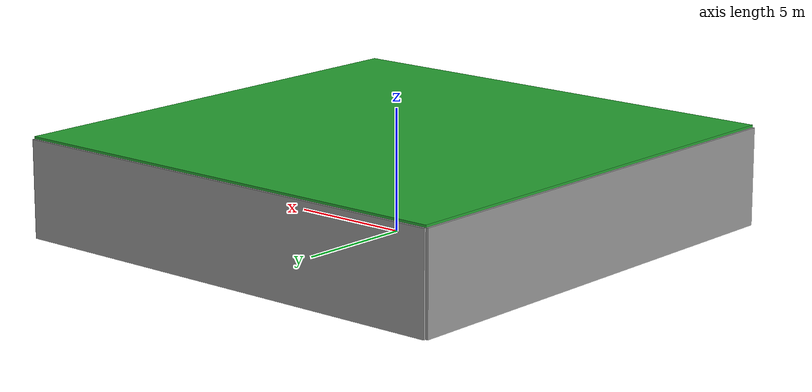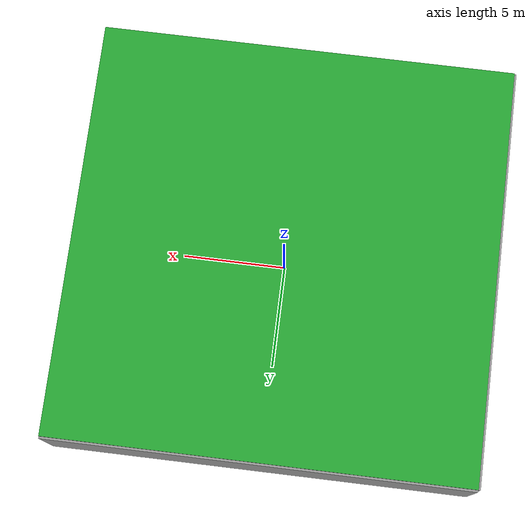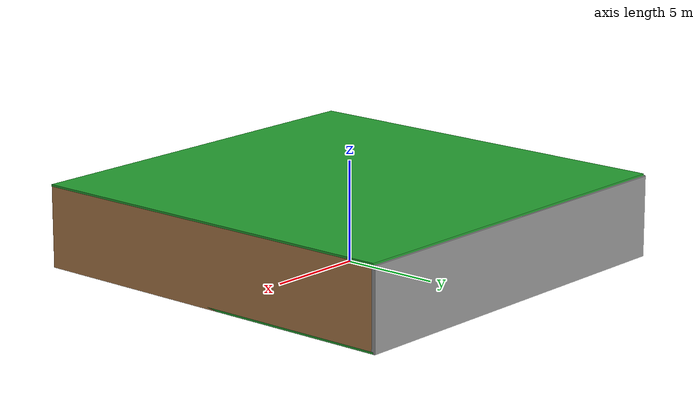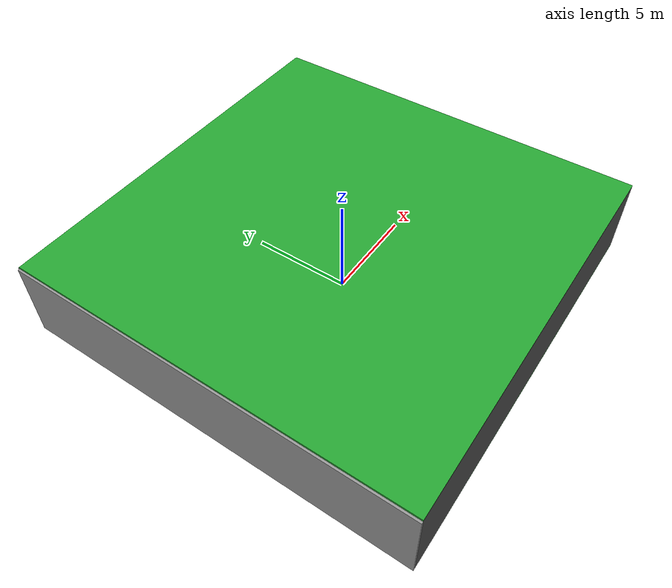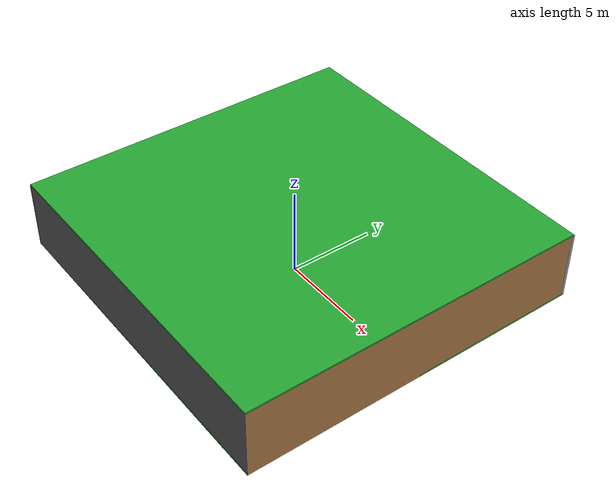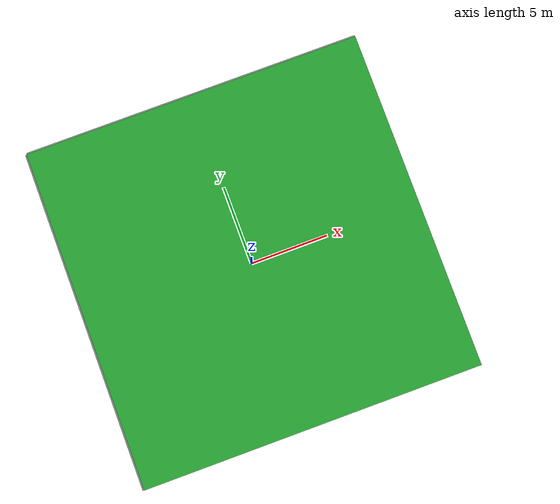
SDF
<sdf version="1.4">
 <world name="default">
  <physics type="ode">
   <max_step_size>0.001</max_step_size>
   <real_time_factor>1</real_time_factor>
   <real_time_update_rate>1000</real_time_update_rate>
   <gravity>0 0 -9.8</gravity>
  </physics>
  <scene><ambient>0.4 0.4 0.4 1</ambient><background>0.7 0.7 0.7 1</background><shadows>1</shadows></scene>
  <model name="Surrounding">
   <static>1</static>
   <link name="Ceiling">
    <collision name="Ceiling_Collision"><geometry><box><size>20 20 0.1</size></box></geometry></collision>
    <visual name="Ceiling_Visual">
     <geometry><box><size>20 20 0.1</size></box></geometry>
     <material>
      <script><uri>file://media/materials/scripts/gazebo.material</uri><name>Gazebo/Green</name></script>
     </material>
    </visual>
    <pose>0 0 4.05 0 0 0</pose>
   </link>
   <link name="Wall_South">
    <collision name="Wall_South_Collision">
     <geometry><box><size>20 0 4</size></box></geometry>
     <pose>0 0 2 0 -0 0</pose>
    </collision>
    <visual name="Wall_South_Visual">
     <pose>0 0 2 0 -0 0</pose>
     <geometry><box><size>20 0 4</size></box></geometry>
     <material>
      <script><uri>file://media/materials/scripts/gazebo.material</uri><name>Gazebo/DarkGrey</name></script>
     </material>
    </visual>
    <velocity_decay><linear>0</linear><angular>0</angular></velocity_decay>
    <pose>0 -10 0 0 -0 0</pose>
   </link>
   <link name="Wall_East">
    <collision name="Wall_21_Collision">
     <geometry><box><size>20 0 4</size></box></geometry>
     <pose>0 0 2 0 -0 0</pose>
    </collision>
    <visual name="Wall_21_Visual">
     <pose>0 0 2 0 -0 0</pose>
     <geometry><box><size>20 0 4</size></box></geometry>
     <material>
      <script><uri>file://media/materials/scripts/gazebo.material</uri><name>Gazebo/WoodPallet</name></script>
     </material>
    </visual>
    <velocity_decay><linear>0</linear><angular>0</angular></velocity_decay>
    <pose>10 0 0 0 -0 1.5708</pose>
   </link>
   <link name="Wall_North">
    <collision name="Wall_22_Collision">
     <geometry><box><size>20 0.2 4</size></box></geometry>
     <pose>0 0 2 0 -0 0</pose>
    </collision>
    <visual name="Wall_22_Visual">
     <pose>0 0 2 0 -0 0</pose>
     <geometry><box><size>20 0.2 4</size></box></geometry>
     <material>
      <script><uri>file://media/materials/scripts/gazebo.material</uri><name>Gazebo/Grey</name></script>
     </material>
    </visual>
    <velocity_decay><linear>0</linear><angular>0</angular></velocity_decay>
    <pose>0 10 0 0 -0 0</pose>
   </link>
   <link name="Wall_West">
    <collision name="Wall_23_Collision">
     <geometry><box><size>20 0.2 4</size></box></geometry>
     <pose>0 0 2 0 -0 0</pose>
    </collision>
    <visual name="Wall_23_Visual">
     <pose>0 0 2 0 -0 0</pose>
     <geometry><box><size>20 0.2 4</size></box></geometry>
     <material>
      <script><uri>file://media/materials/scripts/gazebo.material</uri><name>Gazebo/GreyGradientSky</name></script>
     </material>
    </visual>
    <velocity_decay><linear>0</linear><angular>0</angular></velocity_decay>
    <pose>-10 0 0 0 0 -1.5708</pose>
   </link>
   <link name="Ground_link">
    <collision name="collision">
     <pose>0 0 .05 0 -0 0</pose>
     <geometry><box><size>20 20 0.1</size></box></geometry>
    </collision>
    <visual name="visual">
     <pose>0 0 .05 0 -0 0</pose>
     <geometry><box><size>20 20 0.1</size></box></geometry>
     <material>
      <script><uri>file://media/materials/scripts/gazebo.material</uri><name>Gazebo/GreenGlow</name></script>
     </material>
    </visual>
   </link>
   <static>1</static>
  </model>
  <spherical_coordinates>
   <surface_model>EARTH_WGS84</surface_model>
   <latitude_deg>0</latitude_deg>
   <longitude_deg>0</longitude_deg>
   <elevation>0</elevation>
   <heading_deg>0</heading_deg>
  </spherical_coordinates>
  <light name="lightball_0" type="diffuse">
   <diffuse>0.8 0.8 0.8 1</diffuse>
   <specular>0.2 0.2 0.2 1</specular>
   <attenuation>
    <range>100</range>
    <constant>0.7</constant>
    <linear>0.01</linear>
    <quadratic>0.001</quadratic>
   </attenuation>
   <direction>-0.5 0.1 -0.9</direction>
   <pose>1.57594685199 -7.69909907047 3.57204406821 0 0 0</pose>
  </light>
  <light name="lightball_1" type="diffuse">
   <diffuse>0.8 0.8 0.8 1</diffuse>
   <specular>0.2 0.2 0.2 1</specular>
   <attenuation>
    <range>100</range>
    <constant>0.7</constant>
    <linear>0.01</linear>
    <quadratic>0.001</quadratic>
   </attenuation>
   <direction>-0.5 0.1 -0.9</direction>
   <pose>7.27932529105 0.564501009776 1.83324483529 0 0 0</pose>
  </light>
  <light name="lightball_2" type="diffuse">
   <diffuse>0.8 0.8 0.8 1</diffuse>
   <specular>0.2 0.2 0.2 1</specular>
   <attenuation>
    <range>100</range>
    <constant>0.7</constant>
    <linear>0.01</linear>
    <quadratic>0.001</quadratic>
   </attenuation>
   <direction>-0.5 0.1 -0.9</direction>
   <pose>-9.29564209996 -1.70237829341 3.54577462889 0 0 0</pose>
  </light>
  <light name="lightball_3" type="diffuse">
   <diffuse>0.8 0.8 0.8 1</diffuse>
   <specular>0.2 0.2 0.2 1</specular>
   <attenuation>
    <range>100</range>
    <constant>0.7</constant>
    <linear>0.01</linear>
    <quadratic>0.001</quadratic>
   </attenuation>
   <direction>-0.5 0.1 -0.9</direction>
   <pose>0.123933153339 3.4532352224 3.39243569223 0 0 0</pose>
  </light>
  <light name="lightball_4" type="diffuse">
   <diffuse>0.8 0.8 0.8 1</diffuse>
   <specular>0.2 0.2 0.2 1</specular>
   <attenuation>
    <range>100</range>
    <constant>0.7</constant>
    <linear>0.01</linear>
    <quadratic>0.001</quadratic>
   </attenuation>
   <direction>-0.5 0.1 -0.9</direction>
   <pose>-8.14026108725 -7.08519101622 1.77171226837 0 0 0</pose>
  </light>
  <light name="lightball_5" type="diffuse">
   <diffuse>0.8 0.8 0.8 1</diffuse>
   <specular>0.2 0.2 0.2 1</specular>
   <attenuation>
    <range>100</range>
    <constant>0.7</constant>
    <linear>0.01</linear>
    <quadratic>0.001</quadratic>
   </attenuation>
   <direction>-0.5 0.1 -0.9</direction>
   <pose>-9.14158466065 0.744817934649 0.75705588651 0 0 0</pose>
  </light>
  <light name="lightball_6" type="diffuse">
   <diffuse>0.8 0.8 0.8 1</diffuse>
   <specular>0.2 0.2 0.2 1</specular>
   <attenuation>
    <range>100</range>
    <constant>0.7</constant>
    <linear>0.01</linear>
    <quadratic>0.001</quadratic>
   </attenuation>
   <direction>-0.5 0.1 -0.9</direction>
   <pose>9.74368903671 7.13346598552 3.0168321539 0 0 0</pose>
  </light>
  <include><uri>model://table</uri><pose>-7.39769324941 7.09978004825 0 0 0 2.14738091523</pose></include>
  <include><uri>model://cabinet</uri><pose>-3.38175966133 -8.15186893284 0 0 0 0.207406335071</pose></include>
  <include><uri>model://table</uri><pose>2.43063308096 6.49141452551 0 0 0 0.445883469791</pose></include>
  <include>
   <uri>model://robocup_3Dsim_goal</uri>
   <pose>5.01150029354 -1.66505854915 0 0 0 0.0836329173762</pose>
  </include>
  <include>
   <uri>model://construction_cone</uri>
   <pose>4.88898765352 7.46963171161 0 0 0 0.298125944254</pose>
  </include>
  <include><uri>model://cabinet</uri><pose>7.13676312135 1.12274933616 0 0 0 1.29947401199</pose></include>
 </world>
</sdf>

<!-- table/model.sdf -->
<sdf version="1.5">
  <model name="table">
    <static>true</static>
    <link name="link">
      <collision name="surface">
        <pose>0 0 1.0 0 0 0</pose>
        <geometry>
          <box>
            <size>1.5 0.8 0.03</size>
          </box>
        </geometry>
        <surface>
          <friction>
            <ode>
              <mu>0.6</mu>
              <mu2>0.6</mu2>
            </ode>
          </friction>
        </surface>
      </collision>
      <visual name="visual1">
        <pose>0 0 1.0 0 0 0</pose>
        <geometry>
          <box>
            <size>1.5 0.8 0.03</size>
          </box>
        </geometry>
        <material>
          <script>
            <uri>model://media/materials/scripts/gazebo.material</uri>
            <name>Gazebo/Wood</name>
          </script>
        </material>
      </visual>
      <collision name="front_left_leg">
        <pose>0.68 0.38 0.5 0 0 0</pose>
        <geometry>
          <cylinder>
            <radius>0.02</radius>
            <length>1.0</length>
          </cylinder>
        </geometry>
      </collision>
      <visual name="front_left_leg">
        <pose>0.68 0.38 0.5 0 0 0</pose>
        <geometry>
          <cylinder>
            <radius>0.02</radius>
            <length>1.0</length>
          </cylinder>
        </geometry>
        <material>
          <script>
            <uri>model://media/materials/scripts/gazebo.material</uri>
            <name>Gazebo/Grey</name>
          </script>
        </material>
      </visual>
      <collision name="front_right_leg">
        <pose>0.68 -0.38 0.5 0 0 0</pose>
        <geometry>
          <cylinder>
            <radius>0.02</radius>
            <length>1.0</length>
          </cylinder>
        </geometry>
      </collision>
      <visual name="front_right_leg">
        <pose>0.68 -0.38 0.5 0 0 0</pose>
        <geometry>
          <cylinder>
            <radius>0.02</radius>
            <length>1.0</length>
          </cylinder>
        </geometry>
        <material>
          <script>
            <uri>model://media/materials/scripts/gazebo.material</uri>
            <name>Gazebo/Grey</name>
          </script>
        </material>
      </visual>
      <collision name="back_right_leg">
        <pose>-0.68 -0.38 0.5 0 0 0</pose>
        <geometry>
          <cylinder>
            <radius>0.02</radius>
            <length>1.0</length>
          </cylinder>
        </geometry>
      </collision>
      <visual name="back_right_leg">
        <pose>-0.68 -0.38 0.5 0 0 0</pose>
        <geometry>
          <cylinder>
            <radius>0.02</radius>
            <length>1.0</length>
          </cylinder>
        </geometry>
        <material>
          <script>
            <uri>model://media/materials/scripts/gazebo.material</uri>
            <name>Gazebo/Grey</name>
          </script>
        </material>
      </visual>
      <collision name="back_left_leg">
        <pose>-0.68 0.38 0.5 0 0 0</pose>
        <geometry>
          <cylinder>
            <radius>0.02</radius>
            <length>1.0</length>
          </cylinder>
        </geometry>
      </collision>
      <visual name="back_left_leg">
        <pose>-0.68 0.38 0.5 0 0 0</pose>
        <geometry>
          <cylinder>
            <radius>0.02</radius>
            <length>1.0</length>
          </cylinder>
        </geometry>
        <material>
          <script>
            <uri>model://media/materials/scripts/gazebo.material</uri>
            <name>Gazebo/Grey</name>
          </script>
        </material>
      </visual>
    </link>
  </model>
</sdf>

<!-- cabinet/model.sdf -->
<sdf version="1.5">
  <model name="cabinet">
    <static>true</static>
    <link name="cabinet_bottom_plate">
      <inertial>
        <pose>0 0 -1 0 0 0</pose>
        <inertia>
          <ixx>2.050000</ixx>
          <ixy>0</ixy>
          <ixz>0</ixz>
          <iyy>2.050000</iyy>
          <iyz>0</iyz>
          <izz>2.050000</izz>
        </inertia>
        <mass>25.000000</mass>
      </inertial>
      <collision name="cabinet_bottom_plate_geom">
        <pose>0 0 0.010000 0 0 0</pose>
        <geometry>
          <box>
            <size>0.450000 0.450000 0.020000</size>
          </box>
        </geometry>
      </collision>
      <visual name="cabinet_bottom_plate_geom_visual">
        <pose>0 0 0.010000 0 0 0</pose>
        <geometry>
          <box>
            <size>0.450000 0.450000 0.020000</size>
          </box>
        </geometry>
        <material>
          <script>
            <uri>model://media/materials/scripts/gazebo.material</uri>
            <name>Gazebo/Wood</name>
          </script>
        </material>
      </visual>
      <collision name="cabinet_bottom_plate_geom_cabinet_back_plate">
        <pose>0.235000 0 0.510000 0 0 0</pose>
        <geometry>
          <box>
            <size>0.020000 0.450000 1.020000</size>
          </box>
        </geometry>
      </collision>
      <visual name="cabinet_bottom_plate_geom_cabinet_back_plate_visual">
        <pose>0.235000 0 0.510000 0 0 0</pose>
        <geometry>
          <box>
            <size>0.020000 0.450000 1.020000</size>
          </box>
        </geometry>
        <material>
          <script>
            <uri>model://media/materials/scripts/gazebo.material</uri>
            <name>Gazebo/Wood</name>
          </script>
        </material>
      </visual>
      <collision name="cabinet_bottom_plate_geom_cabinet_left_plate">
        <pose>0 0.235000 0.510000 0 0 0</pose>
        <geometry>
          <box>
            <size>0.450000 0.020000 1.020000</size>
          </box>
        </geometry>
      </collision>
      <visual name="cabinet_bottom_plate_geom_cabinet_left_plate_visual">
        <pose>0 0.235000 0.510000 0 0 0</pose>
        <geometry>
          <box>
            <size>0.450000 0.020000 1.020000</size>
          </box>
        </geometry>
        <material>
          <script>
            <uri>model://media/materials/scripts/gazebo.material</uri>
            <name>Gazebo/Wood</name>
          </script>
        </material>
      </visual>
      <collision name="cabinet_bottom_plate_geom_cabinet_middle_plate">
        <pose>0 0 0.510000 0 0 0</pose>
        <geometry>
          <box>
            <size>0.450000 0.450000 0.020000</size>
          </box>
        </geometry>
      </collision>
      <visual name="cabinet_bottom_plate_geom_cabinet_middle_plate_visual">
        <pose>0 0 0.510000 0 0 0</pose>
        <geometry>
          <box>
            <size>0.450000 0.450000 0.020000</size>
          </box>
        </geometry>
        <material>
          <script>
            <uri>model://media/materials/scripts/gazebo.material</uri>
            <name>Gazebo/Wood</name>
          </script>
        </material>
      </visual>
      <collision name="cabinet_bottom_plate_geom_cabinet_right_plate">
        <pose>0 -0.235000 0.510000 0 0 0</pose>
        <geometry>
          <box>
            <size>0.450000 0.020000 1.020000</size>
          </box>
        </geometry>
      </collision>
      <visual name="cabinet_bottom_plate_geom_cabinet_right_plate_visual">
        <pose>0 -0.235000 0.510000 0 0 0</pose>
        <geometry>
          <box>
            <size>0.450000 0.020000 1.020000</size>
          </box>
        </geometry>
        <material>
          <script>
            <uri>model://media/materials/scripts/gazebo.material</uri>
            <name>Gazebo/Wood</name>
          </script>
        </material>
      </visual>
      <collision name="cabinet_bottom_plate_geom_cabinet_top_plate">
        <pose>0 0 1.010000 0 0 0</pose>
        <geometry>
          <box>
            <size>0.450000 0.450000 0.020000</size>
          </box>
        </geometry>
      </collision>
      <visual name="cabinet_bottom_plate_geom_cabinet_top_plate_visual">
        <pose>0 0 1.010000 0 0 0</pose>
        <geometry>
          <box>
            <size>0.450000 0.450000 0.020000</size>
          </box>
        </geometry>
        <material>
          <script>
            <uri>model://media/materials/scripts/gazebo.material</uri>
            <name>Gazebo/Wood</name>
          </script>
        </material>
      </visual>
    </link>
  </model>
</sdf>

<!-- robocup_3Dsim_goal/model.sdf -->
<sdf version="1.5">
  <model name="robocup_3d_goal">
    <static>true</static>
    <link name="left_post">
      <pose>0 1.05 0.45 0 0 0</pose>
      <collision name="collision">
        <geometry>
          <cylinder>
            <radius>0.05</radius>
            <length>0.9</length>
          </cylinder>
        </geometry>
      </collision>
      <visual name="visual">
        <geometry>
          <cylinder>
            <radius>0.05</radius>
            <length>0.9</length>
          </cylinder>
        </geometry>
        <material>
          <script>
            <uri>file://media/materials/scripts/gazebo.material</uri>
            <name>Gazebo/ZincYellow</name>
          </script>
        </material>
      </visual>
    </link>
    <link name="left_support_horiz_lower">
      <pose>0.30 1.05 0.01 0 0 0</pose>
      <collision name="collision">
        <geometry>
          <box>
            <size>0.50 0.02 0.02</size>
          </box>
        </geometry>
      </collision>
      <visual name="visual">
        <geometry>
          <box>
            <size>0.50 0.02 0.02</size>
          </box>
        </geometry>
        <material>
          <script>
            <uri>file://media/materials/scripts/gazebo.material</uri>
            <name>Gazebo/White</name>
          </script>
        </material>
      </visual>
    </link>
    <link name="left_support_horiz_upper">
      <pose>0.30 1.05 0.79 0 0 0</pose>
      <collision name="collision">
        <geometry>
          <box>
            <size>0.50 0.02 0.02</size>
          </box>
        </geometry>
      </collision>
      <visual name="visual">
        <geometry>
          <box>
            <size>0.50 0.02 0.02</size>
          </box>
        </geometry>
        <material>
          <script>
            <uri>file://media/materials/scripts/gazebo.material</uri>
            <name>Gazebo/White</name>
          </script>
        </material>
      </visual>
    </link>
    <link name="left_support_vertical">
      <pose>0.56 1.05 0.4 0 1.5708 0</pose>
      <collision name="collision">
        <geometry>
          <box>
            <size>0.80 0.02 0.02</size>
          </box>
        </geometry>
      </collision>
      <visual name="visual">
        <geometry>
          <box>
            <size>0.80 0.02 0.02</size>
          </box>
        </geometry>
        <material>
          <script>
            <uri>file://media/materials/scripts/gazebo.material</uri>
            <name>Gazebo/White</name>
          </script>
        </material>
      </visual>
    </link>
    <link name="right_support_horiz_lower">
      <pose>0.30 -1.05 0.01 0 0 0</pose>
      <collision name="collision">
        <geometry>
          <box>
            <size>0.50 0.02 0.02</size>
          </box>
        </geometry>
      </collision>
      <visual name="visual">
        <geometry>
          <box>
            <size>0.50 0.02 0.02</size>
          </box>
        </geometry>
        <material>
          <script>
            <uri>file://media/materials/scripts/gazebo.material</uri>
            <name>Gazebo/White</name>
          </script>
        </material>
      </visual>
    </link>
    <link name="right_support_horiz_upper">
      <pose>0.30 -1.05 0.79 0 0 0</pose>
      <collision name="collision">
        <geometry>
          <box>
            <size>0.50 0.02 0.02</size>
          </box>
        </geometry>
      </collision>
      <visual name="visual">
        <geometry>
          <box>
            <size>0.50 0.02 0.02</size>
          </box>
        </geometry>
        <material>
          <script>
            <uri>file://media/materials/scripts/gazebo.material</uri>
            <name>Gazebo/White</name>
          </script>
        </material>
      </visual>
    </link>
    <link name="right_support_vertical">
      <pose>0.56 -1.05 0.4 0 1.5708 0</pose>
      <collision name="collision">
        <geometry>
          <box>
            <size>0.80 0.02 0.02</size>
          </box>
        </geometry>
      </collision>
      <visual name="visual">
        <geometry>
          <box>
            <size>0.80 0.02 0.02</size>
          </box>
        </geometry>
        <material>
          <script>
            <uri>file://media/materials/scripts/gazebo.material</uri>
            <name>Gazebo/White</name>
          </script>
        </material>
      </visual>
    </link>
    <link name="center_support_horiz_lower">
      <pose>0.56 0 0.01 0 1.5708 0</pose>
      <collision name="collision">
        <geometry>
          <box>
            <size>0.02 2.08 0.02</size>
          </box>
        </geometry>
      </collision>
      <visual name="visual">
        <geometry>
          <box>
            <size>0.02 2.08 0.02</size>
          </box>
        </geometry>
        <material>
          <script>
            <uri>file://media/materials/scripts/gazebo.material</uri>
            <name>Gazebo/White</name>
          </script>
        </material>
      </visual>
    </link>
    <link name="center_support_horiz_upper">
      <pose>0.56 0 0.79 0 1.5708 0</pose>
      <collision name="collision">
        <geometry>
          <box>
            <size>0.02 2.08 0.02</size>
          </box>
        </geometry>
      </collision>
      <visual name="visual">
        <geometry>
          <box>
            <size>0.02 2.08 0.02</size>
          </box>
        </geometry>
        <material>
          <script>
            <uri>file://media/materials/scripts/gazebo.material</uri>
            <name>Gazebo/White</name>
          </script>
        </material>
      </visual>
    </link>
    <link name="right_post">
      <pose>0 -1.05 0.45 0 0 0</pose>
      <collision name="collision">
        <geometry>
          <cylinder>
            <radius>0.05</radius>
            <length>0.9</length>
          </cylinder>
        </geometry>
      </collision>
      <visual name="visual">
        <geometry>
          <cylinder>
            <radius>0.05</radius>
            <length>0.9</length>
          </cylinder>
        </geometry>
        <material>
          <script>
            <uri>file://media/materials/scripts/gazebo.material</uri>
            <name>Gazebo/ZincYellow</name>
          </script>
        </material>
      </visual>
    </link>
    <link name="crossbar">
      <pose>0 0 0.85 1.57 1.57 0</pose>
      <collision name="collision">
        <geometry>
          <cylinder>
            <radius>0.05</radius>
            <length>2.0</length>
          </cylinder>
        </geometry>
      </collision>
      <visual name="visual">
        <geometry>
          <cylinder>
            <radius>0.05</radius>
            <length>2.0</length>
          </cylinder>
        </geometry>
        <material>
          <script>
            <uri>file://media/materials/scripts/gazebo.material</uri>
            <name>Gazebo/ZincYellow</name>
          </script>
        </material>
      </visual>
    </link>
    <link name="center_net">
      <pose>0.56 0 0.40 0 0 0</pose>
      <collision name="collision">
        <geometry>
          <box>
            <size>0.01 2.1 0.80</size>
          </box>
        </geometry>
      </collision>
      <visual name="visual">
        <geometry>
          <box>
            <size>0.01 2.1 0.80</size>
          </box>
        </geometry>
        <material>
          <script>
            <uri>model://../model_source/models/robocup09_spl_field/materials/scripts/</uri>
            <uri>model://../model_source/models/robocup09_spl_field/materials/textures/</uri>
            <name>RoboCup/Net</name>
          </script>
        </material>
      </visual>
    </link>
    <link name="left_net">
      <pose>0.30 1.05 0.40 0 0 0</pose>
      <collision name="collision">
        <geometry>
          <box>
            <size>0.50 0.01 0.76</size>
          </box>
        </geometry>
      </collision>
      <visual name="visual">
        <geometry>
          <box>
            <size>0.50 0.01 0.76</size>
          </box>
        </geometry>
        <material>
          <script>
            <uri>model://../model_source/models/robocup09_spl_field/materials/scripts/</uri>
            <uri>model://../model_source/models/robocup09_spl_field/materials/textures/</uri>
            <name>RoboCup/Net</name>
          </script>
        </material>
      </visual>
    </link>
    <link name="right_net">
      <pose>0.30 -1.05 0.40 0 0 0</pose>
      <collision name="collision">
        <geometry>
          <box>
            <size>0.50 0.01 0.76</size>
          </box>
        </geometry>
      </collision>
      <visual name="visual">
        <geometry>
          <box>
            <size>0.50 0.01 0.76</size>
          </box>
        </geometry>
        <material>
          <script>
            <uri>model://../model_source/models/robocup09_spl_field/materials/scripts/</uri>
            <uri>model://../model_source/models/robocup09_spl_field/materials/textures/</uri>
            <name>RoboCup/Net</name>
          </script>
        </material>
      </visual>
    </link>
  </model>
</sdf>

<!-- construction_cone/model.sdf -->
<sdf version="1.5">
  <model name="Construction Cone">
    <link name="link">
      <collision name="collision">
        <geometry>
          <mesh>
            <scale>10 10 10</scale>
            <uri>file://isr-testbed/construction_cone/meshes/construction_cone.dae</uri>
          </mesh>
        </geometry>
      </collision>
      <visual name="visual">
        <geometry>
          <mesh>
            <scale>10 10 10</scale>
            <uri>file://isr-testbed/construction_cone/meshes/construction_cone.dae</uri>
          </mesh>
        </geometry>
      </visual>
    </link>
  </model>
</sdf>
